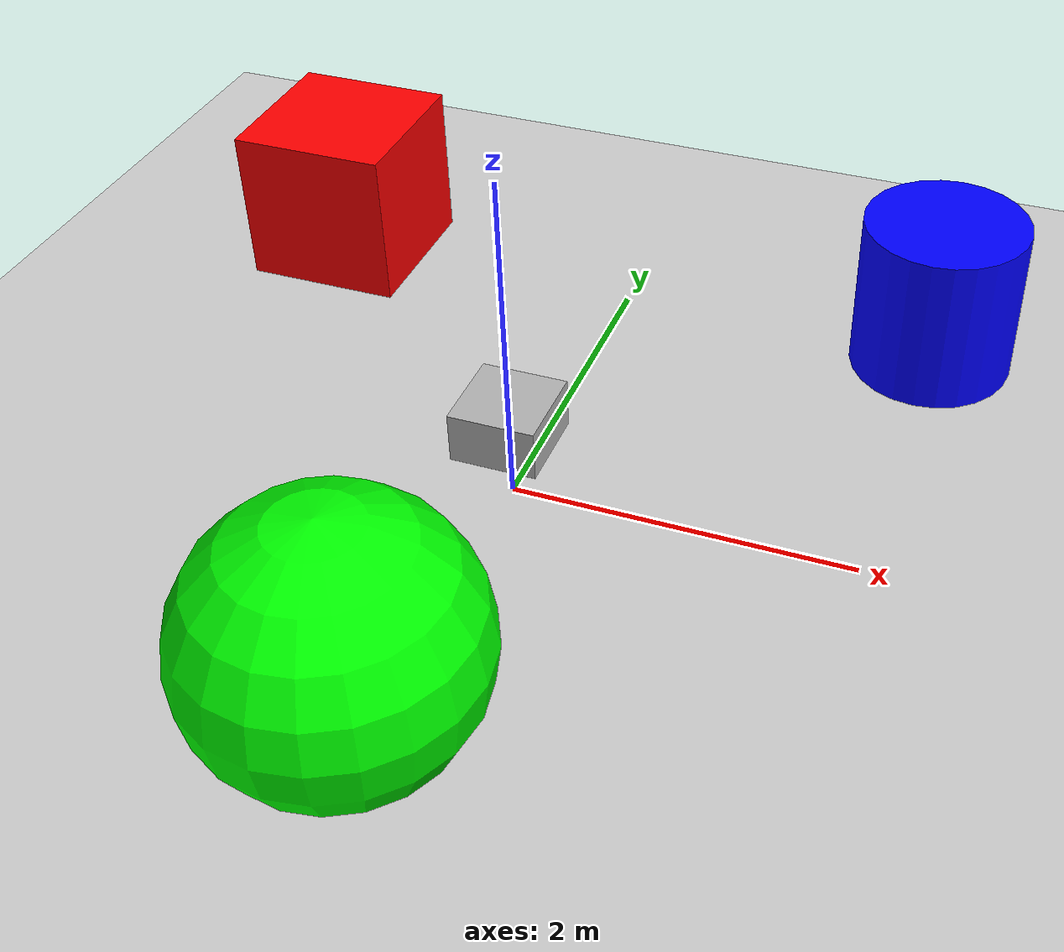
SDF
<?xml version="1.0"?>
<sdf version="1.7">
  <world name="sensor_test_world">
    <!-- Gravity -->
    <gravity>0 0 -9.8</gravity>

    <!-- Physics engine parameters -->
    <physics type="ode">
      <max_step_size>0.001</max_step_size>
      <real_time_factor>1</real_time_factor>
      <real_time_update_rate>1000</real_time_update_rate>
    </physics>

    <!-- Lighting -->
    <light name="sun" type="directional">
      <cast_shadows>true</cast_shadows>
      <pose>0 0 10 0 0 0</pose>
      <diffuse>0.8 0.8 0.8 1</diffuse>
      <specular>0.2 0.2 0.2 1</specular>
      <attenuation>
        <range>1000</range>
        <constant>0.9</constant>
        <linear>0.01</linear>
        <quadratic>0.001</quadratic>
      </attenuation>
      <direction>-0.4 0.2 -1.0</direction>
    </light>

    <!-- Ground plane -->
    <include>
      <uri>model://ground_plane</uri>
    </include>

    <!-- Objects for sensor testing -->
    <model name="red_box">
      <pose>-2 2 0.5 0 0 0</pose>
      <link name="link">
        <collision name="collision">
          <geometry>
            <box>
              <size>1 1 1</size>
            </box>
          </geometry>
        </collision>
        <visual name="visual">
          <geometry>
            <box>
              <size>1 1 1</size>
            </box>
          </geometry>
          <material>
            <ambient>1 0 0 1</ambient>
            <diffuse>1 0 0 1</diffuse>
            <specular>1 1 1 1</specular>
          </material>
        </visual>
        <inertial>
          <mass>1.0</mass>
          <inertia>
            <ixx>0.166667</ixx>
            <ixy>0</ixy>
            <ixz>0</ixz>
            <iyy>0.166667</iyy>
            <iyz>0</iyz>
            <izz>0.166667</izz>
          </inertia>
        </inertial>
      </link>
    </model>

    <model name="blue_cylinder">
      <pose>2 2 0.5 0 0 0</pose>
      <link name="link">
        <collision name="collision">
          <geometry>
            <cylinder>
              <radius>0.5</radius>
              <length>1</length>
            </cylinder>
          </geometry>
        </collision>
        <visual name="visual">
          <geometry>
            <cylinder>
              <radius>0.5</radius>
              <length>1</length>
            </cylinder>
          </geometry>
          <material>
            <ambient>0 0 1 1</ambient>
            <diffuse>0 0 1 1</diffuse>
            <specular>1 1 1 1</specular>
          </material>
        </visual>
        <inertial>
          <mass>1.0</mass>
          <inertia>
            <ixx>0.3125</ixx>
            <ixy>0</ixy>
            <ixz>0</ixz>
            <iyy>0.3125</iyy>
            <iyz>0</iyz>
            <izz>0.125</izz>
          </inertia>
        </inertial>
      </link>
    </model>

    <model name="green_sphere">
      <pose>0 -2 0.75 0 0 0</pose>
      <link name="link">
        <collision name="collision">
          <geometry>
            <sphere>
              <radius>0.75</radius>
            </sphere>
          </geometry>
        </collision>
        <visual name="visual">
          <geometry>
            <sphere>
              <radius>0.75</radius>
            </sphere>
          </geometry>
          <material>
            <ambient>0 1 0 1</ambient>
            <diffuse>0 1 0 1</diffuse>
            <specular>1 1 1 1</specular>
          </material>
        </visual>
        <inertial>
          <mass>1.0</mass>
          <inertia>
            <ixx>0.45</ixx>
            <ixy>0</ixy>
            <ixz>0</ixz>
            <iyy>0.45</iyy>
            <iyz>0</iyz>
            <izz>0.45</izz>
          </inertia>
        </inertial>
      </link>
    </model>

    <!-- A simple robot model with sensors -->
    <model name="robot_with_sensors">
      <pose>0 0 0.5 0 0 0</pose>

      <!-- Main robot body -->
      <link name="chassis">
        <collision name="collision">
          <geometry>
            <box>
              <size>0.5 0.5 0.3</size>
            </box>
          </geometry>
        </collision>
        <visual name="visual">
          <geometry>
            <box>
              <size>0.5 0.5 0.3</size>
            </box>
          </geometry>
          <material>
            <ambient>0.5 0.5 0.5 1</ambient>
            <diffuse>0.7 0.7 0.7 1</diffuse>
            <specular>1 1 1 1</specular>
          </material>
        </visual>
        <inertial>
          <mass>10.0</mass>
          <inertia>
            <ixx>0.291667</ixx>
            <ixy>0</ixy>
            <ixz>0</ixz>
            <iyy>0.291667</iyy>
            <iyz>0</iyz>
            <izz>0.416667</izz>
          </inertia>
        </inertial>
      </link>

      <!-- LiDAR sensor -->
      <sensor name="lidar_sensor" type="gpu_lidar">
        <pose>0.1 0 0.2 0 0 0</pose>
        <update_rate>10</update_rate>
        <ray>
          <scan>
            <horizontal>
              <samples>720</samples>
              <resolution>1</resolution>
              <min_angle>-3.14159</min_angle>  <!-- -π radians -->
              <max_angle>3.14159</max_angle>    <!-- π radians -->
            </horizontal>
          </scan>
          <range>
            <min>0.1</min>
            <max>30</max>
            <resolution>0.01</resolution>
          </range>
        </ray>
        <always_on>1</always_on>
        <visualize>true</visualize>
      </sensor>

      <!-- IMU sensor -->
      <sensor name="imu_sensor" type="imu">
        <pose>0 0 0.1 0 0 0</pose>
        <always_on>true</always_on>
        <update_rate>100</update_rate>
        <imu>
          <angular_velocity>
            <x>
              <noise type="gaussian">
                <mean>0.0</mean>
                <stddev>2e-4</stddev> <!-- rad/s -->
              </noise>
            </x>
            <y>
              <noise type="gaussian">
                <mean>0.0</mean>
                <stddev>2e-4</stddev> <!-- rad/s -->
              </noise>
            </y>
            <z>
              <noise type="gaussian">
                <mean>0.0</mean>
                <stddev>2e-4</stddev> <!-- rad/s -->
              </noise>
            </z>
          </angular_velocity>
          <linear_acceleration>
            <x>
              <noise type="gaussian">
                <mean>0.0</mean>
                <stddev>1.7e-2</stddev> <!-- m/s² -->
              </noise>
            </x>
            <y>
              <noise type="gaussian">
                <mean>0.0</mean>
                <stddev>1.7e-2</stddev> <!-- m/s² -->
              </noise>
            </y>
            <z>
              <noise type="gaussian">
                <mean>0.0</mean>
                <stddev>1.7e-2</stddev> <!-- m/s² -->
              </noise>
            </z>
          </linear_acceleration>
        </imu>
      </sensor>
    </model>
  </world>
</sdf>
